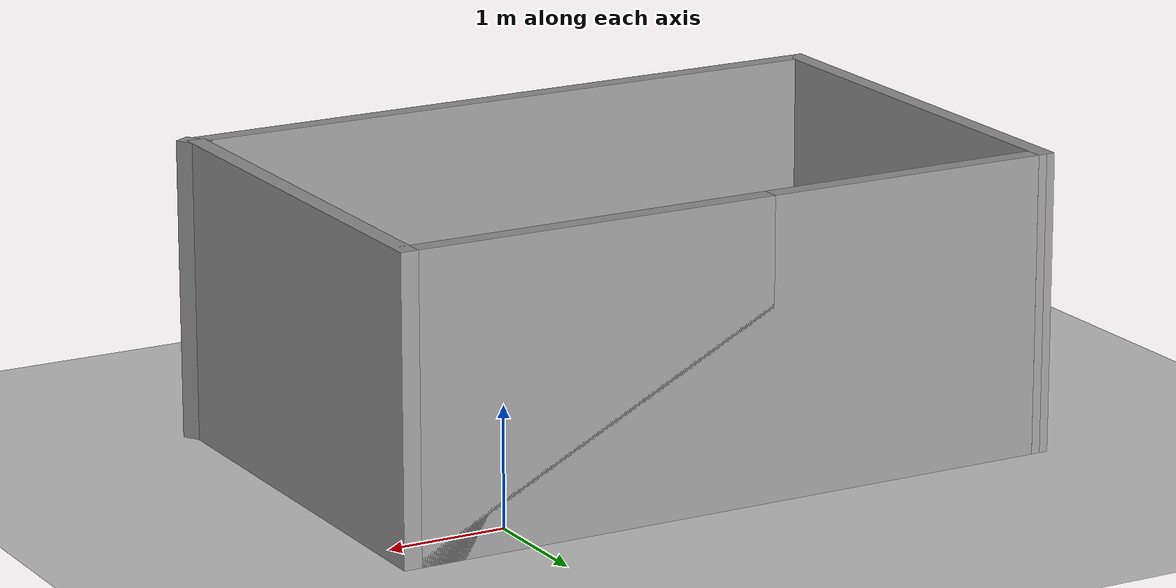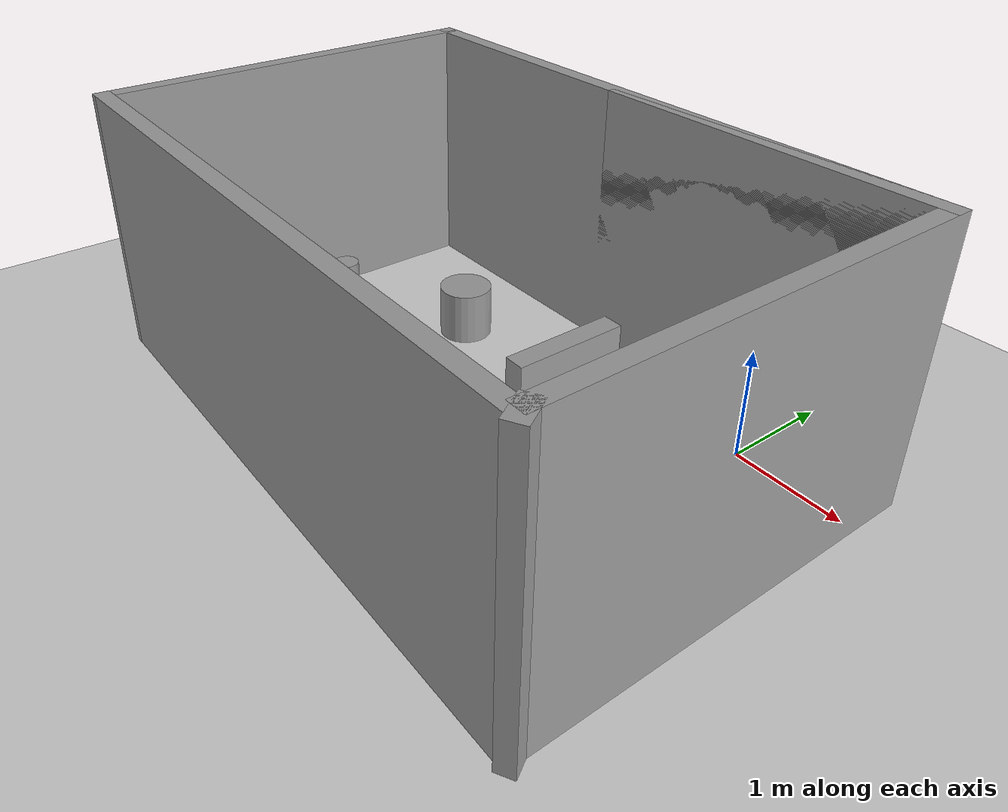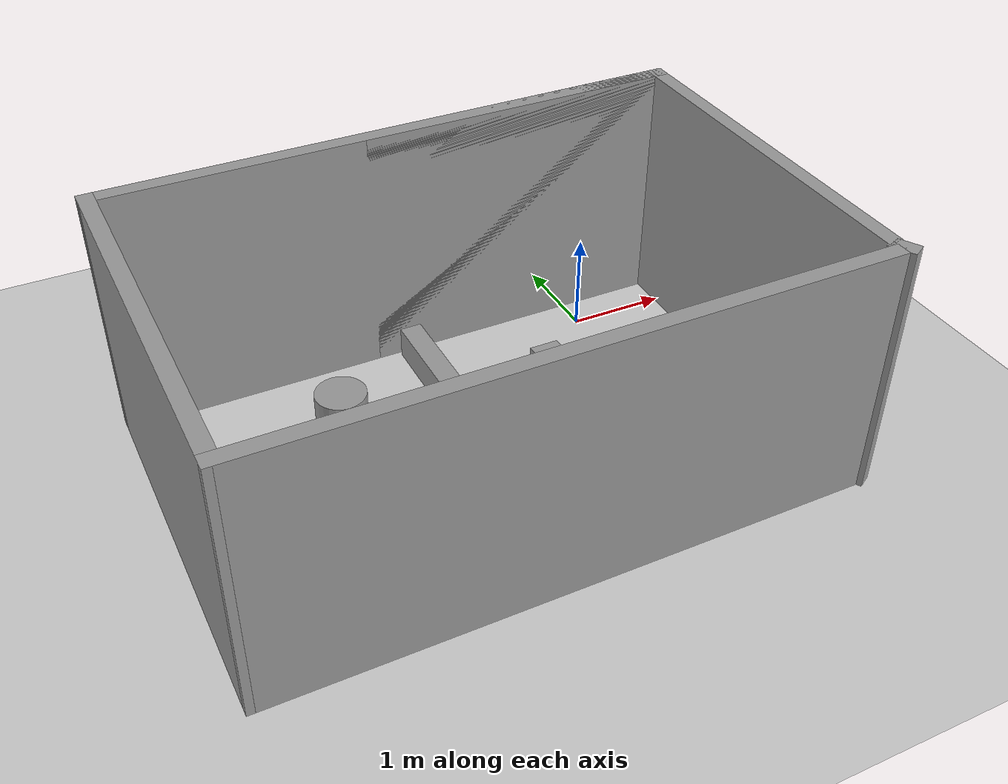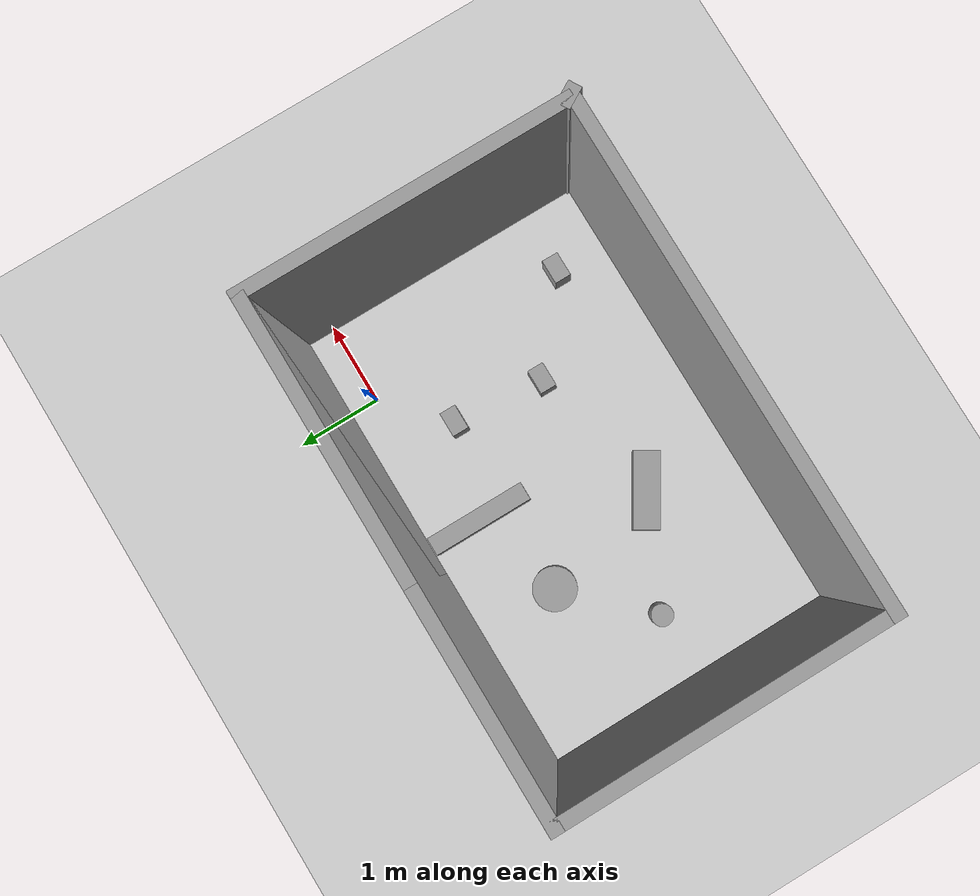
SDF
<sdf version="1.7">
 <world name="default">
  <light name="sun" type="directional">
   <pose>0 0 10 0 -0 0</pose>
   <diffuse>0.8 0.8 0.8 1</diffuse>
   <specular>0.2 0.2 0.2 1</specular>
   <attenuation>
    <range>1000</range>
    <constant>0.9</constant>
    <linear>0.01</linear>
    <quadratic>0.001</quadratic>
   </attenuation>
   <direction>-0.5 0.1 -0.9</direction>
   <spot><inner_angle>0</inner_angle><outer_angle>0</outer_angle><falloff>0</falloff></spot>
  </light>
  <model name="ground_plane">
   <static>1</static>
   <link name="link">
    <collision name="collision">
     <geometry><plane><normal>0 0 1</normal><size>100 100</size></plane></geometry>
    </collision>
    <visual name="visual"><geometry><plane><normal>0 0 1</normal><size>100 100</size></plane></geometry></visual>
   </link>
  </model>
  <gravity>0 0 -9.8</gravity>
  <magnetic_field>6e-06 2.3e-05 -4.2e-05</magnetic_field>
  <atmosphere type="adiabatic"/>
  <physics type="ode">
   <max_step_size>0.001</max_step_size>
   <real_time_factor>1</real_time_factor>
   <real_time_update_rate>1000</real_time_update_rate>
  </physics>
  <scene><ambient>0.4 0.4 0.4 1</ambient><background>0.7 0.7 0.7 1</background><shadows>1</shadows></scene>
  <spherical_coordinates>
   <surface_model>EARTH_WGS84</surface_model>
   <latitude_deg>0</latitude_deg>
   <longitude_deg>0</longitude_deg>
   <elevation>0</elevation>
   <heading_deg>0</heading_deg>
  </spherical_coordinates>
  <model name="final_world">
   <link name="link_4">
    <inertial>
     <mass>1</mass>
     <inertia>
      <ixx>0.166667</ixx>
      <ixy>0</ixy>
      <ixz>0</ixz>
      <iyy>0.166667</iyy>
      <iyz>0</iyz>
      <izz>0.166667</izz>
     </inertia>
    </inertial>
    <visual name="visual">
     <geometry><box><size>0.22 1.22 0.32</size></box></geometry>
     <material>
      <lighting>1</lighting>
      <script><uri>file://media/materials/scripts/gazebo.material</uri><name>Gazebo/Grey</name></script>
      <shader type="pixel"><normal_map>__default__</normal_map></shader>
      <ambient>0.3 0.3 0.3 1</ambient>
      <diffuse>0.7 0.7 0.7 1</diffuse>
      <specular>0.01 0.01 0.01 1</specular>
      <emissive>0 0 0 1</emissive>
     </material>
    </visual>
    <collision name="collision">
     <geometry><box><size>0.22 1.22 0.32</size></box></geometry>
     <surface>
      <friction>
       <ode><mu>1</mu><mu2>1</mu2><fdir1>0 0 0</fdir1><slip1>0</slip1><slip2>0</slip2></ode>
       <torsional>
        <coefficient>1</coefficient>
        <patch_radius>0</patch_radius>
        <surface_radius>0</surface_radius>
        <use_patch_radius>1</use_patch_radius>
        <ode><slip>0</slip></ode>
       </torsional>
      </friction>
      <bounce><restitution_coefficient>0</restitution_coefficient><threshold>1e+06</threshold></bounce>
      <contact>
       <collide_without_contact>0</collide_without_contact>
       <collide_without_contact_bitmask>1</collide_without_contact_bitmask>
       <collide_bitmask>1</collide_bitmask>
       <ode>
        <soft_cfm>0</soft_cfm>
        <soft_erp>0.2</soft_erp>
        <kp>1e+13</kp>
        <kd>1</kd>
        <max_vel>0.01</max_vel>
        <min_depth>0</min_depth>
       </ode>
       <bullet>
        <split_impulse>1</split_impulse>
        <split_impulse_penetration_threshold>-0.01</split_impulse_penetration_threshold>
        <soft_cfm>0</soft_cfm>
        <soft_erp>0.2</soft_erp>
        <kp>1e+13</kp>
        <kd>1</kd>
       </bullet>
      </contact>
     </surface>
    </collision>
   </link>
   <static>0</static>
   <pose>-1.8 -0.320001 0.159999 2e-06 2e-06 0</pose>
  </model>
  <model name="new_wall">
   <pose>-1.76751 -1.44812 0 0 -0 0</pose>
   <link name="Wall_12">
    <collision name="Wall_12_Collision">
     <geometry><box><size>3.25 0.15 2.5</size></box></geometry>
     <pose>0 0 1.25 0 -0 0</pose>
    </collision>
    <visual name="Wall_12_Visual">
     <pose>0 0 1.25 0 -0 0</pose>
     <geometry><box><size>3.25 0.15 2.5</size></box></geometry>
     <material>
      <script><uri>file://media/materials/scripts/gazebo.material</uri><name>Gazebo/Grey</name></script>
      <ambient>1 1 1 1</ambient>
     </material>
     <meta><layer>0</layer></meta>
    </visual>
    <pose>1.26146 1.85684 0 0 -0 0</pose>
   </link>
   <link name="Wall_17">
    <collision name="Wall_17_Collision">
     <geometry><box><size>5.85 0.15 2.5</size></box></geometry>
     <pose>0 0 1.25 0 -0 0</pose>
    </collision>
    <visual name="Wall_17_Visual">
     <pose>0 0 1.25 0 -0 0</pose>
     <geometry><box><size>5.85 0.15 2.5</size></box></geometry>
     <material>
      <script><uri>file://media/materials/scripts/gazebo.material</uri><name>Gazebo/Grey</name></script>
      <ambient>1 1 1 1</ambient>
     </material>
     <meta><layer>0</layer></meta>
    </visual>
    <pose>-0.03854 1.85684 0 0 -0 0</pose>
   </link>
   <link name="Wall_19">
    <collision name="Wall_19_Collision">
     <geometry><box><size>5.75 0.15 2.5</size></box></geometry>
     <pose>0 0 1.25 0 -0 0</pose>
    </collision>
    <visual name="Wall_19_Visual">
     <pose>0 0 1.25 0 -0 0</pose>
     <geometry><box><size>5.75 0.15 2.5</size></box></geometry>
     <material>
      <script><uri>file://media/materials/scripts/gazebo.material</uri><name>Gazebo/Grey</name></script>
      <ambient>1 1 1 1</ambient>
     </material>
     <meta><layer>0</layer></meta>
    </visual>
    <pose>-0.070329 -1.81327 0 0 -0 0</pose>
   </link>
   <link name="Wall_21">
    <collision name="Wall_21_Collision">
     <geometry><box><size>3.82016 0.15 2.5</size></box></geometry>
     <pose>0 0 1.25 0 -0 0</pose>
    </collision>
    <visual name="Wall_21_Visual">
     <pose>0 0 1.25 0 -0 0</pose>
     <geometry><box><size>3.82016 0.15 2.5</size></box></geometry>
     <material>
      <script><uri>file://media/materials/scripts/gazebo.material</uri><name>Gazebo/Grey</name></script>
      <ambient>1 1 1 1</ambient>
     </material>
     <meta><layer>0</layer></meta>
    </visual>
    <pose>-2.87943 0.021786 0 0 -0 -1.56583</pose>
   </link>
   <link name="Wall_24">
    <collision name="Wall_24_Collision">
     <geometry><box><size>3.75 0.15 2.5</size></box></geometry>
     <pose>0 0 1.25 0 -0 0</pose>
    </collision>
    <visual name="Wall_24_Visual">
     <pose>0 0 1.25 0 -0 0</pose>
     <geometry><box><size>3.75 0.15 2.5</size></box></geometry>
     <material>
      <script><uri>file://media/materials/scripts/gazebo.material</uri><name>Gazebo/Grey</name></script>
      <ambient>1 1 1 1</ambient>
     </material>
     <meta><layer>0</layer></meta>
    </visual>
    <pose>2.81146 0.056842 0 0 -0 -1.5708</pose>
   </link>
   <link name="Wall_26">
    <collision name="Wall_26_Collision">
     <geometry><box><size>0.25 0.15 2.5</size></box></geometry>
     <pose>0 0 1.25 0 -0 0</pose>
    </collision>
    <visual name="Wall_26_Visual">
     <pose>0 0 1.25 0 -0 0</pose>
     <geometry><box><size>0.25 0.15 2.5</size></box></geometry>
     <material>
      <script><uri>file://media/materials/scripts/gazebo.material</uri><name>Gazebo/Grey</name></script>
      <ambient>1 1 1 1</ambient>
     </material>
     <meta><layer>0</layer></meta>
    </visual>
    <pose>2.83646 -1.78646 0 0 -0 -1.0472</pose>
   </link>
   <static>1</static>
  </model>
  <model name="walls_seven_new11">
   <link name="link_2">
    <inertial>
     <mass>1</mass>
     <inertia>
      <ixx>0.166667</ixx>
      <ixy>0</ixy>
      <ixz>0</ixz>
      <iyy>0.166667</iyy>
      <iyz>0</iyz>
      <izz>0.166667</izz>
     </inertia>
    </inertial>
    <pose>0.1 0.6 0.125 0 -0 0</pose>
    <visual name="visual">
     <geometry><box><size>0.3 0.2 0.3</size></box></geometry>
     <material>
      <lighting>1</lighting>
      <script><uri>file://media/materials/scripts/gazebo.material</uri><name>Gazebo/Grey</name></script>
      <shader type="pixel"><normal_map>__default__</normal_map></shader>
      <ambient>0.3 0.3 0.3 1</ambient>
      <diffuse>0.7 0.7 0.7 1</diffuse>
      <specular>0.01 0.01 0.01 1</specular>
      <emissive>0 0 0 1</emissive>
     </material>
    </visual>
    <collision name="collision">
     <geometry><box><size>0.3 0.2 0.3</size></box></geometry>
     <surface>
      <friction>
       <ode><mu>1</mu><mu2>1</mu2><fdir1>0 0 0</fdir1><slip1>0</slip1><slip2>0</slip2></ode>
       <torsional>
        <coefficient>1</coefficient>
        <patch_radius>0</patch_radius>
        <surface_radius>0</surface_radius>
        <use_patch_radius>1</use_patch_radius>
        <ode><slip>0</slip></ode>
       </torsional>
      </friction>
      <bounce><restitution_coefficient>0</restitution_coefficient><threshold>1e+06</threshold></bounce>
      <contact>
       <collide_without_contact>0</collide_without_contact>
       <collide_without_contact_bitmask>1</collide_without_contact_bitmask>
       <collide_bitmask>1</collide_bitmask>
       <ode>
        <soft_cfm>0</soft_cfm>
        <soft_erp>0.2</soft_erp>
        <kp>1e+13</kp>
        <kd>1</kd>
        <max_vel>0.01</max_vel>
        <min_depth>0</min_depth>
       </ode>
       <bullet>
        <split_impulse>1</split_impulse>
        <split_impulse_penetration_threshold>-0.01</split_impulse_penetration_threshold>
        <soft_cfm>0</soft_cfm>
        <soft_erp>0.2</soft_erp>
        <kp>1e+13</kp>
        <kd>1</kd>
       </bullet>
      </contact>
     </surface>
    </collision>
   </link>
   <link name="link_2_clone">
    <inertial>
     <mass>1</mass>
     <inertia>
      <ixx>0.166667</ixx>
      <ixy>0</ixy>
      <ixz>0</ixz>
      <iyy>0.166667</iyy>
      <iyz>0</iyz>
      <izz>0.166667</izz>
     </inertia>
    </inertial>
    <pose>1 -1.3 0.125 0 -0 0</pose>
    <visual name="visual">
     <geometry><box><size>0.3 0.2 0.3</size></box></geometry>
     <material>
      <lighting>1</lighting>
      <script><uri>file://media/materials/scripts/gazebo.material</uri><name>Gazebo/Grey</name></script>
      <shader type="pixel"><normal_map>__default__</normal_map></shader>
      <ambient>0.3 0.3 0.3 1</ambient>
      <diffuse>0.7 0.7 0.7 1</diffuse>
      <specular>0.01 0.01 0.01 1</specular>
      <emissive>0 0 0 1</emissive>
     </material>
    </visual>
    <collision name="collision">
     <geometry><box><size>0.3 0.2 0.3</size></box></geometry>
     <surface>
      <friction>
       <ode><mu>1</mu><mu2>1</mu2><fdir1>0 0 0</fdir1><slip1>0</slip1><slip2>0</slip2></ode>
       <torsional>
        <coefficient>1</coefficient>
        <patch_radius>0</patch_radius>
        <surface_radius>0</surface_radius>
        <use_patch_radius>1</use_patch_radius>
        <ode><slip>0</slip></ode>
       </torsional>
      </friction>
      <bounce><restitution_coefficient>0</restitution_coefficient><threshold>1e+06</threshold></bounce>
      <contact>
       <collide_without_contact>0</collide_without_contact>
       <collide_without_contact_bitmask>1</collide_without_contact_bitmask>
       <collide_bitmask>1</collide_bitmask>
       <ode>
        <soft_cfm>0</soft_cfm>
        <soft_erp>0.2</soft_erp>
        <kp>1e+13</kp>
        <kd>1</kd>
        <max_vel>0.01</max_vel>
        <min_depth>0</min_depth>
       </ode>
       <bullet>
        <split_impulse>1</split_impulse>
        <split_impulse_penetration_threshold>-0.01</split_impulse_penetration_threshold>
        <soft_cfm>0</soft_cfm>
        <soft_erp>0.2</soft_erp>
        <kp>1e+13</kp>
        <kd>1</kd>
       </bullet>
      </contact>
     </surface>
    </collision>
   </link>
   <link name="link_3">
    <inertial>
     <mass>1</mass>
     <inertia>
      <ixx>0.166667</ixx>
      <ixy>0</ixy>
      <ixz>0</ixz>
      <iyy>0.166667</iyy>
      <iyz>0</iyz>
      <izz>0.166667</izz>
     </inertia>
    </inertial>
    <pose>0 -0.5 0.125 0 -0 0</pose>
    <visual name="visual">
     <geometry><box><size>0.3 0.2 0.3</size></box></geometry>
     <material>
      <lighting>1</lighting>
      <script><uri>file://media/materials/scripts/gazebo.material</uri><name>Gazebo/Grey</name></script>
      <shader type="pixel"><normal_map>__default__</normal_map></shader>
      <ambient>0.3 0.3 0.3 1</ambient>
      <diffuse>0.7 0.7 0.7 1</diffuse>
      <specular>0.01 0.01 0.01 1</specular>
      <emissive>0 0 0 1</emissive>
     </material>
    </visual>
    <collision name="collision">
     <geometry><box><size>0.3 0.2 0.3</size></box></geometry>
     <surface>
      <friction>
       <ode><mu>1</mu><mu2>1</mu2><fdir1>0 0 0</fdir1><slip1>0</slip1><slip2>0</slip2></ode>
       <torsional>
        <coefficient>1</coefficient>
        <patch_radius>0</patch_radius>
        <surface_radius>0</surface_radius>
        <use_patch_radius>1</use_patch_radius>
        <ode><slip>0</slip></ode>
       </torsional>
      </friction>
      <bounce><restitution_coefficient>0</restitution_coefficient><threshold>1e+06</threshold></bounce>
      <contact>
       <collide_without_contact>0</collide_without_contact>
       <collide_without_contact_bitmask>1</collide_without_contact_bitmask>
       <collide_bitmask>1</collide_bitmask>
       <ode>
        <soft_cfm>0</soft_cfm>
        <soft_erp>0.2</soft_erp>
        <kp>1e+13</kp>
        <kd>1</kd>
        <max_vel>0.01</max_vel>
        <min_depth>0</min_depth>
       </ode>
       <bullet>
        <split_impulse>1</split_impulse>
        <split_impulse_penetration_threshold>-0.01</split_impulse_penetration_threshold>
        <soft_cfm>0</soft_cfm>
        <soft_erp>0.2</soft_erp>
        <kp>1e+13</kp>
        <kd>1</kd>
       </bullet>
      </contact>
     </surface>
    </collision>
   </link>
   <link name="link_5">
    <inertial>
     <mass>1</mass>
     <inertia>
      <ixx>0.166667</ixx>
      <ixy>0</ixy>
      <ixz>0</ixz>
      <iyy>0.166667</iyy>
      <iyz>0</iyz>
      <izz>0.166667</izz>
     </inertia>
     <pose>0.1 0 0 0 -0 0</pose>
    </inertial>
    <pose>-1.7 -0.85 0.155 0 -0 1.0177</pose>
    <visual name="visual">
     <geometry><box><size>0.31 0.9 0.31</size></box></geometry>
     <material>
      <lighting>1</lighting>
      <script><uri>file://media/materials/scripts/gazebo.material</uri><name>Gazebo/Grey</name></script>
      <shader type="pixel"><normal_map>__default__</normal_map></shader>
      <ambient>0.3 0.3 0.3 1</ambient>
      <diffuse>0.7 0.7 0.7 1</diffuse>
      <specular>0.01 0.01 0.01 1</specular>
      <emissive>0 0 0 1</emissive>
     </material>
    </visual>
    <collision name="collision">
     <geometry><box><size>0.31 0.9 0.31</size></box></geometry>
     <surface>
      <friction>
       <ode><mu>1</mu><mu2>1</mu2><fdir1>0 0 0</fdir1><slip1>0</slip1><slip2>0</slip2></ode>
       <torsional>
        <coefficient>1</coefficient>
        <patch_radius>0</patch_radius>
        <surface_radius>0</surface_radius>
        <use_patch_radius>1</use_patch_radius>
        <ode><slip>0</slip></ode>
       </torsional>
      </friction>
      <bounce><restitution_coefficient>0</restitution_coefficient><threshold>1e+06</threshold></bounce>
      <contact>
       <collide_without_contact>0</collide_without_contact>
       <collide_without_contact_bitmask>1</collide_without_contact_bitmask>
       <collide_bitmask>1</collide_bitmask>
       <ode>
        <soft_cfm>0</soft_cfm>
        <soft_erp>0.2</soft_erp>
        <kp>1e+13</kp>
        <kd>1</kd>
        <max_vel>0.01</max_vel>
        <min_depth>0</min_depth>
       </ode>
       <bullet>
        <split_impulse>1</split_impulse>
        <split_impulse_penetration_threshold>-0.01</split_impulse_penetration_threshold>
        <soft_cfm>0</soft_cfm>
        <soft_erp>0.2</soft_erp>
        <kp>1e+13</kp>
        <kd>1</kd>
       </bullet>
      </contact>
     </surface>
    </collision>
   </link>
   <link name="link_6">
    <inertial>
     <mass>1</mass>
     <inertia><ixx>0.145833</ixx><ixy>0</ixy><ixz>0</ixz><iyy>0.145833</iyy><iyz>0</iyz><izz>0.125</izz></inertia>
    </inertial>
    <pose>-2.1 0.6 0.25 0 -0 0</pose>
    <visual name="visual">
     <geometry><cylinder><radius>0.25</radius><length>0.5</length></cylinder></geometry>
     <material>
      <lighting>1</lighting>
      <script><uri>file://media/materials/scripts/gazebo.material</uri><name>Gazebo/Grey</name></script>
      <shader type="pixel"><normal_map>__default__</normal_map></shader>
      <ambient>0.3 0.3 0.3 1</ambient>
      <diffuse>0.7 0.7 0.7 1</diffuse>
      <specular>0.01 0.01 0.01 1</specular>
      <emissive>0 0 0 1</emissive>
     </material>
    </visual>
    <collision name="collision">
     <geometry><cylinder><radius>0.25</radius><length>0.5</length></cylinder></geometry>
     <surface>
      <friction>
       <ode><mu>1</mu><mu2>1</mu2><fdir1>0 0 0</fdir1><slip1>0</slip1><slip2>0</slip2></ode>
       <torsional>
        <coefficient>1</coefficient>
        <patch_radius>0</patch_radius>
        <surface_radius>0</surface_radius>
        <use_patch_radius>1</use_patch_radius>
        <ode><slip>0</slip></ode>
       </torsional>
      </friction>
      <bounce><restitution_coefficient>0</restitution_coefficient><threshold>1e+06</threshold></bounce>
      <contact>
       <collide_without_contact>0</collide_without_contact>
       <collide_without_contact_bitmask>1</collide_without_contact_bitmask>
       <collide_bitmask>1</collide_bitmask>
       <ode>
        <soft_cfm>0</soft_cfm>
        <soft_erp>0.2</soft_erp>
        <kp>1e+13</kp>
        <kd>1</kd>
        <max_vel>0.01</max_vel>
        <min_depth>0</min_depth>
       </ode>
       <bullet>
        <split_impulse>1</split_impulse>
        <split_impulse_penetration_threshold>-0.01</split_impulse_penetration_threshold>
        <soft_cfm>0</soft_cfm>
        <soft_erp>0.2</soft_erp>
        <kp>1e+13</kp>
        <kd>1</kd>
       </bullet>
      </contact>
     </surface>
    </collision>
   </link>
   <link name="link_7">
    <inertial>
     <mass>1</mass>
     <inertia><ixx>0.145833</ixx><ixy>0</ixy><ixz>0</ixz><iyy>0.145833</iyy><iyz>0</iyz><izz>0.125</izz></inertia>
    </inertial>
    <pose>-2.93633 -0.25 0.5 0 -0 0</pose>
    <visual name="visual">
     <geometry><cylinder><radius>0.125</radius><length>0.35</length></cylinder></geometry>
     <material>
      <lighting>1</lighting>
      <script><uri>file://media/materials/scripts/gazebo.material</uri><name>Gazebo/Grey</name></script>
      <shader type="pixel"><normal_map>__default__</normal_map></shader>
      <ambient>0.3 0.3 0.3 1</ambient>
      <diffuse>0.7 0.7 0.7 1</diffuse>
      <specular>0.01 0.01 0.01 1</specular>
      <emissive>0 0 0 1</emissive>
     </material>
    </visual>
    <collision name="collision">
     <geometry><cylinder><radius>0.125</radius><length>0.35</length></cylinder></geometry>
     <surface>
      <friction>
       <ode><mu>1</mu><mu2>1</mu2><fdir1>0 0 0</fdir1><slip1>0</slip1><slip2>0</slip2></ode>
       <torsional>
        <coefficient>1</coefficient>
        <patch_radius>0</patch_radius>
        <surface_radius>0</surface_radius>
        <use_patch_radius>1</use_patch_radius>
        <ode><slip>0</slip></ode>
       </torsional>
      </friction>
      <bounce><restitution_coefficient>0</restitution_coefficient><threshold>1e+06</threshold></bounce>
      <contact>
       <collide_without_contact>0</collide_without_contact>
       <collide_without_contact_bitmask>1</collide_without_contact_bitmask>
       <collide_bitmask>1</collide_bitmask>
       <ode>
        <soft_cfm>0</soft_cfm>
        <soft_erp>0.2</soft_erp>
        <kp>1e+13</kp>
        <kd>1</kd>
        <max_vel>0.01</max_vel>
        <min_depth>0</min_depth>
       </ode>
       <bullet>
        <split_impulse>1</split_impulse>
        <split_impulse_penetration_threshold>-0.01</split_impulse_penetration_threshold>
        <soft_cfm>0</soft_cfm>
        <soft_erp>0.2</soft_erp>
        <kp>1e+13</kp>
        <kd>1</kd>
       </bullet>
      </contact>
     </surface>
    </collision>
   </link>
   <static>0</static>
   <pose>-0.803333 -1.25 0.025 0 -0 0</pose>
  </model>
 </world>
</sdf>
